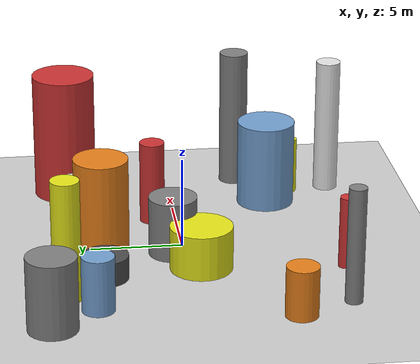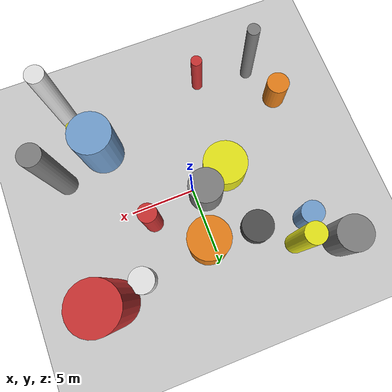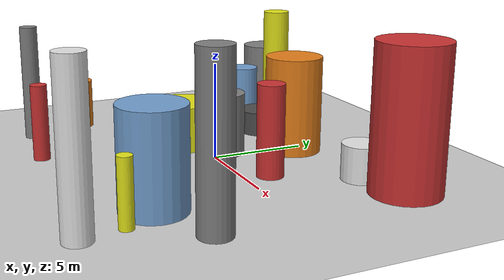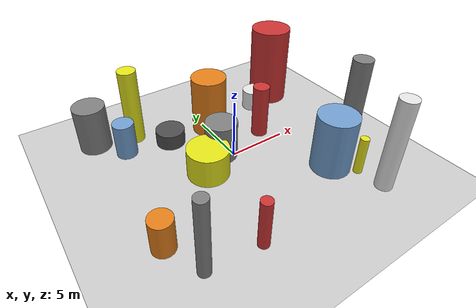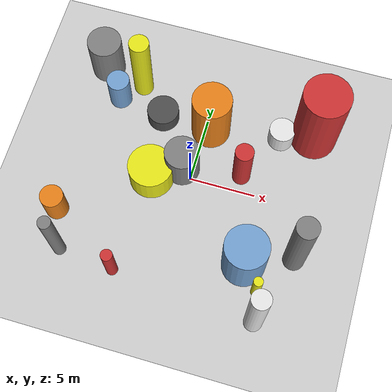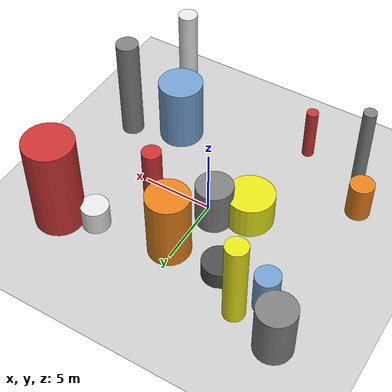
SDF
<?xml version='1.0'?>
<sdf version='1.6'>
  <world name='default'>
    <!-- Sun light -->
    <light name='sun' type='directional'>
      <cast_shadows>1</cast_shadows>
      <pose>0 0 10 0 0 0</pose>
      <diffuse>0.8 0.8 0.8 1</diffuse>
      <specular>0.2 0.2 0.2 1</specular>
      <attenuation>
        <range>1000</range>
        <constant>0.9</constant>
        <linear>0.01</linear>
        <quadratic>0.001</quadratic>
      </attenuation>
      <direction>-0.5 0.1 -0.9</direction>
    </light>

    <!-- Ground plane -->
    <model name='ground_plane'>
      <static>1</static>
      <link name='link'>
        <collision name='collision'>
          <geometry>
            <plane>
              <normal>0 0 1</normal>
              <size>100 100</size>
            </plane>
          </geometry>
          <surface>
            <contact>
              <collide_bitmask>65535</collide_bitmask>
              <ode/>
            </contact>
            <friction>
              <ode>
                <mu>100</mu>
                <mu2>50</mu2>
              </ode>
              <torsional><ode/></torsional>
            </friction>
            <bounce/>
          </surface>
          <max_contacts>10</max_contacts>
        </collision>
        <visual name='visual'>
          <cast_shadows>0</cast_shadows>
          <geometry>
            <plane>
              <normal>0 0 1</normal>
              <size>100 100</size>
            </plane>
          </geometry>
          <material>
            <script>
              <uri>file://media/materials/scripts/gazebo.material</uri>
              <n>Gazebo/Grey</n>
            </script>
          </material>
        </visual>
      </link>
    </model>

    <!-- Environment -->
    <magnetic_field>6e-06 2.3e-05 -4.2e-05</magnetic_field>
    <atmosphere type='adiabatic'/>
    <physics name='default_physics' default='0' type='ode'>
      <gravity>0 0 -9.8</gravity>
      <max_step_size>0.004</max_step_size>
      <real_time_factor>1</real_time_factor>
      <real_time_update_rate>250</real_time_update_rate>
    </physics>
    <scene>
      <ambient>0.4 0.4 0.4 1</ambient>
      <background>0.7 0.7 0.7 1</background>
      <shadows>1</shadows>
    </scene>
    <wind/>
    <spherical_coordinates>
      <surface_model>EARTH_WGS84</surface_model>
      <latitude_deg>0</latitude_deg>
      <longitude_deg>0</longitude_deg>
      <elevation>0</elevation>
      <heading_deg>0</heading_deg>
    </spherical_coordinates>

    <!-- ============ OBSTACLES (17) ============ -->
    <model name='obs_00'>
      <static>1</static>
      <link name='link'>
        <visual name='visual'>
          <geometry>
            <cylinder>
              <radius>1.2242</radius>
              <length>1.3161</length>
            </cylinder>
          </geometry>
          <material>
            <script>
              <n>Gazebo/DarkGrey</n>
              <uri>file://media/materials/scripts/gazebo.material</uri>
            </script>
            <ambient>0.3 0.3 0.3 1</ambient>
          </material>
        </visual>
        <collision name='collision'>
          <geometry>
            <cylinder>
              <radius>1.2242</radius>
              <length>1.3161</length>
            </cylinder>
          </geometry>
          <max_contacts>10</max_contacts>
          <surface>
            <contact><ode/></contact>
            <bounce/>
            <friction>
              <ode><mu>1</mu><mu2>1</mu2></ode>
              <torsional><ode/></torsional>
            </friction>
          </surface>
        </collision>
      </link>
      <pose>-3.5004 4.4495 0.6581 0 0 0.1334</pose>
    </model>

    <model name='obs_01'>
      <static>1</static>
      <link name='link'>
        <visual name='visual'>
          <geometry>
            <cylinder>
              <radius>1.3139</radius>
              <length>3.2836</length>
            </cylinder>
          </geometry>
          <material>
            <script>
              <n>Gazebo/Grey</n>
              <uri>file://media/materials/scripts/gazebo.material</uri>
            </script>
            <ambient>0.5 0.5 0.5 1</ambient>
          </material>
        </visual>
        <collision name='collision'>
          <geometry>
            <cylinder>
              <radius>1.3139</radius>
              <length>3.2836</length>
            </cylinder>
          </geometry>
          <max_contacts>10</max_contacts>
          <surface>
            <contact><ode/></contact>
            <bounce/>
            <friction>
              <ode><mu>1</mu><mu2>1</mu2></ode>
              <torsional><ode/></torsional>
            </friction>
          </surface>
        </collision>
      </link>
      <pose>-0.8265 0.6180 1.6418 0 0 0.7504</pose>
    </model>

    <model name='obs_02'>
      <static>1</static>
      <link name='link'>
        <visual name='visual'>
          <geometry>
            <cylinder>
              <radius>0.4309</radius>
              <length>3.9745</length>
            </cylinder>
          </geometry>
          <material>
            <script>
              <n>Gazebo/Red</n>
              <uri>file://media/materials/scripts/gazebo.material</uri>
            </script>
            <ambient>0.8 0.2 0.2 1</ambient>
          </material>
        </visual>
        <collision name='collision'>
          <geometry>
            <cylinder>
              <radius>0.4309</radius>
              <length>3.9745</length>
            </cylinder>
          </geometry>
          <max_contacts>10</max_contacts>
          <surface>
            <contact><ode/></contact>
            <bounce/>
            <friction>
              <ode><mu>1</mu><mu2>1</mu2></ode>
              <torsional><ode/></torsional>
            </friction>
          </surface>
        </collision>
      </link>
      <pose>-3.5267 -8.3535 1.9872 0 0 0.4807</pose>
    </model>

    <model name='obs_03'>
      <static>1</static>
      <link name='link'>
        <visual name='visual'>
          <geometry>
            <cylinder>
              <radius>0.6851</radius>
              <length>7.7023</length>
            </cylinder>
          </geometry>
          <material>
            <script>
              <n>Gazebo/White</n>
              <uri>file://media/materials/scripts/gazebo.material</uri>
            </script>
            <ambient>0.9 0.9 0.9 1</ambient>
          </material>
        </visual>
        <collision name='collision'>
          <geometry>
            <cylinder>
              <radius>0.6851</radius>
              <length>7.7023</length>
            </cylinder>
          </geometry>
          <max_contacts>10</max_contacts>
          <surface>
            <contact><ode/></contact>
            <bounce/>
            <friction>
              <ode><mu>1</mu><mu2>1</mu2></ode>
              <torsional><ode/></torsional>
            </friction>
          </surface>
        </collision>
      </link>
      <pose>7.2581 -9.2224 3.8512 0 0 0.8047</pose>
    </model>

    <model name='obs_04'>
      <static>1</static>
      <link name='link'>
        <visual name='visual'>
          <geometry>
            <cylinder>
              <radius>1.7569</radius>
              <length>7.1676</length>
            </cylinder>
          </geometry>
          <material>
            <script>
              <n>Gazebo/Red</n>
              <uri>file://media/materials/scripts/gazebo.material</uri>
            </script>
            <ambient>0.8 0.2 0.2 1</ambient>
          </material>
        </visual>
        <collision name='collision'>
          <geometry>
            <cylinder>
              <radius>1.7569</radius>
              <length>7.1676</length>
            </cylinder>
          </geometry>
          <max_contacts>10</max_contacts>
          <surface>
            <contact><ode/></contact>
            <bounce/>
            <friction>
              <ode><mu>1</mu><mu2>1</mu2></ode>
              <torsional><ode/></torsional>
            </friction>
          </surface>
        </collision>
      </link>
      <pose>8.2286 5.9104 3.5838 0 0 2.4366</pose>
    </model>

    <model name='obs_05'>
      <static>1</static>
      <link name='link'>
        <visual name='visual'>
          <geometry>
            <cylinder>
              <radius>1.6063</radius>
              <length>4.8712</length>
            </cylinder>
          </geometry>
          <material>
            <script>
              <n>Gazebo/Blue</n>
              <uri>file://media/materials/scripts/gazebo.material</uri>
            </script>
            <ambient>0.447 0.624 0.812 1</ambient>
          </material>
        </visual>
        <collision name='collision'>
          <geometry>
            <cylinder>
              <radius>1.6063</radius>
              <length>4.8712</length>
            </cylinder>
          </geometry>
          <max_contacts>10</max_contacts>
          <surface>
            <contact><ode/></contact>
            <bounce/>
            <friction>
              <ode><mu>1</mu><mu2>1</mu2></ode>
              <torsional><ode/></torsional>
            </friction>
          </surface>
        </collision>
      </link>
      <pose>5.5412 -5.4026 2.4356 0 0 1.2093</pose>
    </model>

    <model name='obs_06'>
      <static>1</static>
      <link name='link'>
        <visual name='visual'>
          <geometry>
            <cylinder>
              <radius>1.4945</radius>
              <length>5.1506</length>
            </cylinder>
          </geometry>
          <material>
            <script>
              <n>Gazebo/Orange</n>
              <uri>file://media/materials/scripts/gazebo.material</uri>
            </script>
            <ambient>0.9 0.5 0.1 1</ambient>
          </material>
        </visual>
        <collision name='collision'>
          <geometry>
            <cylinder>
              <radius>1.4945</radius>
              <length>5.1506</length>
            </cylinder>
          </geometry>
          <max_contacts>10</max_contacts>
          <surface>
            <contact><ode/></contact>
            <bounce/>
            <friction>
              <ode><mu>1</mu><mu2>1</mu2></ode>
              <torsional><ode/></torsional>
            </friction>
          </surface>
        </collision>
      </link>
      <pose>0.3832 4.3781 2.5753 0 0 3.1072</pose>
    </model>

    <model name='obs_07'>
      <static>1</static>
      <link name='link'>
        <visual name='visual'>
          <geometry>
            <cylinder>
              <radius>0.4727</radius>
              <length>6.3192</length>
            </cylinder>
          </geometry>
          <material>
            <script>
              <n>Gazebo/Grey</n>
              <uri>file://media/materials/scripts/gazebo.material</uri>
            </script>
            <ambient>0.5 0.5 0.5 1</ambient>
          </material>
        </visual>
        <collision name='collision'>
          <geometry>
            <cylinder>
              <radius>0.4727</radius>
              <length>6.3192</length>
            </cylinder>
          </geometry>
          <max_contacts>10</max_contacts>
          <surface>
            <contact><ode/></contact>
            <bounce/>
            <friction>
              <ode><mu>1</mu><mu2>1</mu2></ode>
              <torsional><ode/></torsional>
            </friction>
          </surface>
        </collision>
      </link>
      <pose>-7.7175 -7.9246 3.1596 0 0 0.1209</pose>
    </model>

    <model name='obs_08'>
      <static>1</static>
      <link name='link'>
        <visual name='visual'>
          <geometry>
            <cylinder>
              <radius>0.7520</radius>
              <length>6.5991</length>
            </cylinder>
          </geometry>
          <material>
            <script>
              <n>Gazebo/Yellow</n>
              <uri>file://media/materials/scripts/gazebo.material</uri>
            </script>
            <ambient>0.9 0.9 0.1 1</ambient>
          </material>
        </visual>
        <collision name='collision'>
          <geometry>
            <cylinder>
              <radius>0.7520</radius>
              <length>6.5991</length>
            </cylinder>
          </geometry>
          <max_contacts>10</max_contacts>
          <surface>
            <contact><ode/></contact>
            <bounce/>
            <friction>
              <ode><mu>1</mu><mu2>1</mu2></ode>
              <torsional><ode/></torsional>
            </friction>
          </surface>
        </collision>
      </link>
      <pose>-5.7755 6.5961 3.2996 0 0 1.4946</pose>
    </model>

    <model name='obs_09'>
      <static>1</static>
      <link name='link'>
        <visual name='visual'>
          <geometry>
            <cylinder>
              <radius>0.9834</radius>
              <length>1.8171</length>
            </cylinder>
          </geometry>
          <material>
            <script>
              <n>Gazebo/White</n>
              <uri>file://media/materials/scripts/gazebo.material</uri>
            </script>
            <ambient>0.9 0.9 0.9 1</ambient>
          </material>
        </visual>
        <collision name='collision'>
          <geometry>
            <cylinder>
              <radius>0.9834</radius>
              <length>1.8171</length>
            </cylinder>
          </geometry>
          <max_contacts>10</max_contacts>
          <surface>
            <contact><ode/></contact>
            <bounce/>
            <friction>
              <ode><mu>1</mu><mu2>1</mu2></ode>
              <torsional><ode/></torsional>
            </friction>
          </surface>
        </collision>
      </link>
      <pose>5.7847 5.1137 0.9086 0 0 1.0821</pose>
    </model>

    <model name='obs_10'>
      <static>1</static>
      <link name='link'>
        <visual name='visual'>
          <geometry>
            <cylinder>
              <radius>0.8644</radius>
              <length>2.7452</length>
            </cylinder>
          </geometry>
          <material>
            <script>
              <n>Gazebo/Orange</n>
              <uri>file://media/materials/scripts/gazebo.material</uri>
            </script>
            <ambient>0.9 0.5 0.1 1</ambient>
          </material>
        </visual>
        <collision name='collision'>
          <geometry>
            <cylinder>
              <radius>0.8644</radius>
              <length>2.7452</length>
            </cylinder>
          </geometry>
          <max_contacts>10</max_contacts>
          <surface>
            <contact><ode/></contact>
            <bounce/>
            <friction>
              <ode><mu>1</mu><mu2>1</mu2></ode>
              <torsional><ode/></torsional>
            </friction>
          </surface>
        </collision>
      </link>
      <pose>-8.9603 -5.0126 1.3726 0 0 0.1636</pose>
    </model>

    <model name='obs_11'>
      <static>1</static>
      <link name='link'>
        <visual name='visual'>
          <geometry>
            <cylinder>
              <radius>0.3489</radius>
              <length>3.2167</length>
            </cylinder>
          </geometry>
          <material>
            <script>
              <n>Gazebo/Yellow</n>
              <uri>file://media/materials/scripts/gazebo.material</uri>
            </script>
            <ambient>0.9 0.9 0.1 1</ambient>
          </material>
        </visual>
        <collision name='collision'>
          <geometry>
            <cylinder>
              <radius>0.3489</radius>
              <length>3.2167</length>
            </cylinder>
          </geometry>
          <max_contacts>10</max_contacts>
          <surface>
            <contact><ode/></contact>
            <bounce/>
            <friction>
              <ode><mu>1</mu><mu2>1</mu2></ode>
              <torsional><ode/></torsional>
            </friction>
          </surface>
        </collision>
      </link>
      <pose>6.8819 -7.0757 1.6084 0 0 0.8325</pose>
    </model>

    <model name='obs_12'>
      <static>1</static>
      <link name='link'>
        <visual name='visual'>
          <geometry>
            <cylinder>
              <radius>0.8012</radius>
              <length>7.8664</length>
            </cylinder>
          </geometry>
          <material>
            <script>
              <n>Gazebo/Grey</n>
              <uri>file://media/materials/scripts/gazebo.material</uri>
            </script>
            <ambient>0.5 0.5 0.5 1</ambient>
          </material>
        </visual>
        <collision name='collision'>
          <geometry>
            <cylinder>
              <radius>0.8012</radius>
              <length>7.8664</length>
            </cylinder>
          </geometry>
          <max_contacts>10</max_contacts>
          <surface>
            <contact><ode/></contact>
            <bounce/>
            <friction>
              <ode><mu>1</mu><mu2>1</mu2></ode>
              <torsional><ode/></torsional>
            </friction>
          </surface>
        </collision>
      </link>
      <pose>8.9811 -4.0083 3.9332 0 0 1.4535</pose>
    </model>

    <model name='obs_13'>
      <static>1</static>
      <link name='link'>
        <visual name='visual'>
          <geometry>
            <cylinder>
              <radius>0.6913</radius>
              <length>4.6630</length>
            </cylinder>
          </geometry>
          <material>
            <script>
              <n>Gazebo/Red</n>
              <uri>file://media/materials/scripts/gazebo.material</uri>
            </script>
            <ambient>0.8 0.2 0.2 1</ambient>
          </material>
        </visual>
        <collision name='collision'>
          <geometry>
            <cylinder>
              <radius>0.6913</radius>
              <length>4.6630</length>
            </cylinder>
          </geometry>
          <max_contacts>10</max_contacts>
          <surface>
            <contact><ode/></contact>
            <bounce/>
            <friction>
              <ode><mu>1</mu><mu2>1</mu2></ode>
              <torsional><ode/></torsional>
            </friction>
          </surface>
        </collision>
      </link>
      <pose>3.6344 1.2966 2.3315 0 0 0.7138</pose>
    </model>

    <model name='obs_14'>
      <static>1</static>
      <link name='link'>
        <visual name='visual'>
          <geometry>
            <cylinder>
              <radius>1.6887</radius>
              <length>2.4396</length>
            </cylinder>
          </geometry>
          <material>
            <script>
              <n>Gazebo/Yellow</n>
              <uri>file://media/materials/scripts/gazebo.material</uri>
            </script>
            <ambient>0.9 0.9 0.1 1</ambient>
          </material>
        </visual>
        <collision name='collision'>
          <geometry>
            <cylinder>
              <radius>1.6887</radius>
              <length>2.4396</length>
            </cylinder>
          </geometry>
          <max_contacts>10</max_contacts>
          <surface>
            <contact><ode/></contact>
            <bounce/>
            <friction>
              <ode><mu>1</mu><mu2>1</mu2></ode>
              <torsional><ode/></torsional>
            </friction>
          </surface>
        </collision>
      </link>
      <pose>-2.8856 -0.6721 1.2198 0 0 0.9131</pose>
    </model>

    <model name='obs_15'>
      <static>1</static>
      <link name='link'>
        <visual name='visual'>
          <geometry>
            <cylinder>
              <radius>0.8621</radius>
              <length>3.0269</length>
            </cylinder>
          </geometry>
          <material>
            <script>
              <n>Gazebo/Blue</n>
              <uri>file://media/materials/scripts/gazebo.material</uri>
            </script>
            <ambient>0.447 0.624 0.812 1</ambient>
          </material>
        </visual>
        <collision name='collision'>
          <geometry>
            <cylinder>
              <radius>0.8621</radius>
              <length>3.0269</length>
            </cylinder>
          </geometry>
          <max_contacts>10</max_contacts>
          <surface>
            <contact><ode/></contact>
            <bounce/>
            <friction>
              <ode><mu>1</mu><mu2>1</mu2></ode>
              <torsional><ode/></torsional>
            </friction>
          </surface>
        </collision>
      </link>
      <pose>-7.2093 5.1018 1.5135 0 0 0.4734</pose>
    </model>

    <model name='obs_16'>
      <static>1</static>
      <link name='link'>
        <visual name='visual'>
          <geometry>
            <cylinder>
              <radius>1.3093</radius>
              <length>3.9768</length>
            </cylinder>
          </geometry>
          <material>
            <script>
              <n>Gazebo/Grey</n>
              <uri>file://media/materials/scripts/gazebo.material</uri>
            </script>
            <ambient>0.5 0.5 0.5 1</ambient>
          </material>
        </visual>
        <collision name='collision'>
          <geometry>
            <cylinder>
              <radius>1.3093</radius>
              <length>3.9768</length>
            </cylinder>
          </geometry>
          <max_contacts>10</max_contacts>
          <surface>
            <contact><ode/></contact>
            <bounce/>
            <friction>
              <ode><mu>1</mu><mu2>1</mu2></ode>
              <torsional><ode/></torsional>
            </friction>
          </surface>
        </collision>
      </link>
      <pose>-9.0162 7.4986 1.9884 0 0 2.0489</pose>
    </model>

    <!-- GUI camera -->
    <gui fullscreen='0'>
      <camera name='user_camera'>
        <pose>-15 0 18 0 0.85 0.15</pose>
        <view_controller>orbit</view_controller>
        <projection_type>perspective</projection_type>
      </camera>
    </gui>
  </world>
</sdf>
